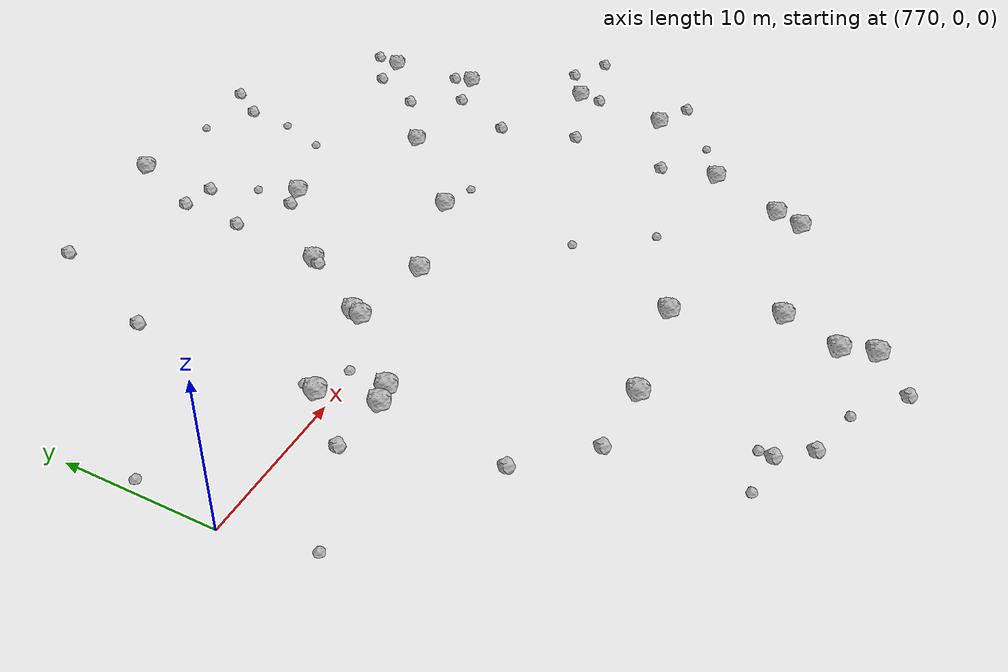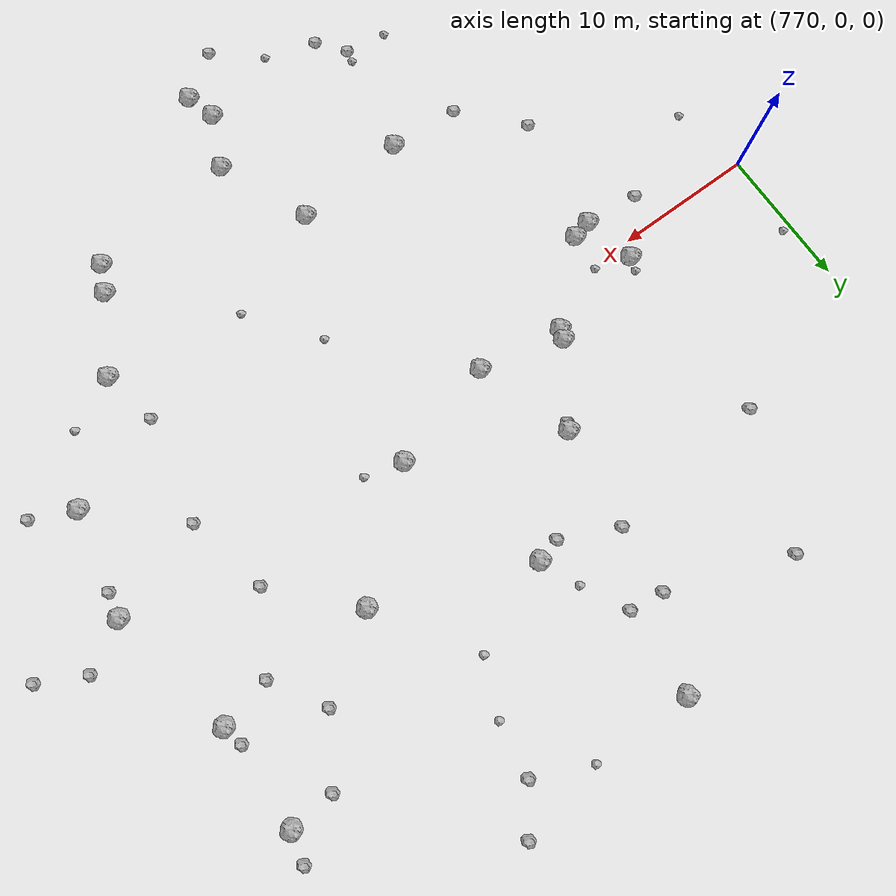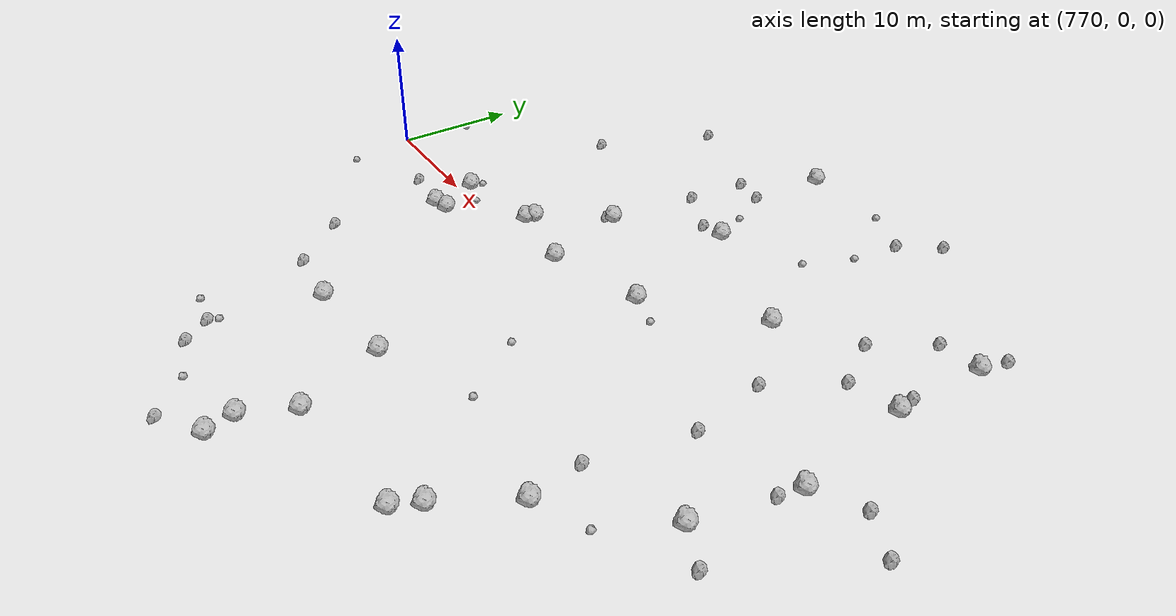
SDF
<sdf version="1.6">
 <world name="default">
  <include><uri>model://sun</uri></include>
  <model name="rock1_20_4">
   <include><uri>model://rock1</uri><pose>780.7087238553667 1.047119432619084 0.5 0 0 0</pose></include>
  </model>
  <model name="rock1_20_5">
   <include><uri>model://rock1</uri><pose>781.5615007582418 -2.721428096870792 0.5 0 0 0</pose></include>
  </model>
  <model name="rock1_20_6">
   <include><uri>model://rock1</uri><pose>822.7758342607357 1.30580835592027 0.5 0 0 0</pose></include>
  </model>
  <model name="rock1_20_7">
   <include><uri>model://rock1</uri><pose>821.1682087089554 -6.28629386375162 0.5 0 0 0</pose></include>
  </model>
  <model name="rock1_20_8">
   <include><uri>model://rock1</uri><pose>810.8321413861769 -20.036732497918734 0.5 0 0 0</pose></include>
  </model>
  <model name="rock1_20_9">
   <include><uri>model://rock1</uri><pose>798.5094511256077 14.224671554900432 0.5 0 0 0</pose></include>
  </model>
  <model name="rock1_20_10">
   <include><uri>model://rock1</uri><pose>796.0763832410858 26.54390348556337 0.5 0 0 0</pose></include>
  </model>
  <model name="rock1_20_11">
   <include><uri>model://rock1</uri><pose>798.3817781210798 -25.025211873225274 0.5 0 0 0</pose></include>
  </model>
  <model name="rock1_20_12">
   <include><uri>model://rock1</uri><pose>801.8836378258139 3.663269624933811 0.5 0 0 0</pose></include>
  </model>
  <model name="rock1_20_13">
   <include><uri>model://rock1</uri><pose>788.1073647116916 3.0646148261018666 0.5 0 0 0</pose></include>
  </model>
  <model name="rock1_20_14">
   <include><uri>model://rock1</uri><pose>793.977697011786 1.454041069729584 0.5 0 0 0</pose></include>
  </model>
  <model name="rock1_20_15">
   <include><uri>model://rock1</uri><pose>811.7577595870337 -18.13167919682487 0.5 0 0 0</pose></include>
  </model>
  <model name="rock1_20_16">
   <include><uri>model://rock1</uri><pose>791.6988519845751 8.365341680058584 0.5 0 0 0</pose></include>
  </model>
  <model name="rock1_20_17">
   <include><uri>model://rock1</uri><pose>782.9170620956335 -2.3881175419100273 0.5 0 0 0</pose></include>
  </model>
  <model name="rock1_20_18">
   <include><uri>model://rock1</uri><pose>800.0786611668133 -21.291052738356928 0.5 0 0 0</pose></include>
  </model>
  <model name="rock1_20_19">
   <include><uri>model://rock1</uri><pose>789.1473881896933 -15.4974859853613 0.5 0 0 0</pose></include>
  </model>
  <model name="rock1_20_20">
   <include><uri>model://rock1</uri><pose>820.9724203381492 10.928925062806023 0.5 0 0 0</pose></include>
  </model>
  <model name="rock1_20_21">
   <include><uri>model://rock1</uri><pose>809.4150963798675 10.125920861918459 0.5 0 0 0</pose></include>
  </model>
  <model name="rock1_20_22">
   <include><uri>model://rock1</uri><pose>787.8533105512536 2.3589244478238385 0.5 0 0 0</pose></include>
  </model>
  <model name="rock1_20_23">
   <include><uri>model://rock1</uri><pose>797.2754239507265 -14.721835300061377 0.5 0 0 0</pose></include>
  </model>
  <model name="rock1_20_24">
   <include><uri>model://rock1</uri><pose>820.9543822723572 18.486615211233577 0.5 0 0 0</pose></include>
  </model>
  <model name="rock1_20_25">
   <include><uri>model://rock1</uri><pose>814.7743476271094 -12.863143285273463 0.5 0 0 0</pose></include>
  </model>
  <model name="rock1_20_26">
   <include><uri>model://rock1</uri><pose>799.0074334482929 -27.165031107944486 0.5 0 0 0</pose></include>
  </model>
  <model name="rock2_20_0">
   <include><uri>model://rock2</uri><pose>807.2650547770018 24.708907001039748 0.3 0 0 0</pose></include>
  </model>
  <model name="rock2_20_1">
   <include><uri>model://rock2</uri><pose>814.9388069511034 13.852621422595284 0.3 0 0 0</pose></include>
  </model>
  <model name="rock2_20_2">
   <include><uri>model://rock2</uri><pose>817.2238779299878 10.075136642513954 0.3 0 0 0</pose></include>
  </model>
  <model name="rock2_20_3">
   <include><uri>model://rock2</uri><pose>780.3904415653581 -11.171914371119517 0.3 0 0 0</pose></include>
  </model>
  <model name="rock2_20_4">
   <include><uri>model://rock2</uri><pose>829.4040070215191 1.5924790237087585 0.3 0 0 0</pose></include>
  </model>
  <model name="rock2_20_5">
   <include><uri>model://rock2</uri><pose>795.8579896425124 -29.42323859561697 0.3 0 0 0</pose></include>
  </model>
  <model name="rock2_20_6">
   <include><uri>model://rock2</uri><pose>821.5077048436174 20.689550283531105 0.3 0 0 0</pose></include>
  </model>
  <model name="rock2_20_7">
   <include><uri>model://rock2</uri><pose>826.1755413207538 3.23406467460147 0.3 0 0 0</pose></include>
  </model>
  <model name="rock2_20_8">
   <include><uri>model://rock2</uri><pose>809.4490080897016 27.663125100845235 0.3 0 0 0</pose></include>
  </model>
  <model name="rock2_20_9">
   <include><uri>model://rock2</uri><pose>784.6076453794063 23.700499779845195 0.3 0 0 0</pose></include>
  </model>
  <model name="rock2_20_10">
   <include><uri>model://rock2</uri><pose>796.7434669485839 13.791216549527398 0.3 0 0 0</pose></include>
  </model>
  <model name="rock2_20_11">
   <include><uri>model://rock2</uri><pose>793.2085304688459 20.56297382619445 0.3 0 0 0</pose></include>
  </model>
  <model name="rock2_20_12">
   <include><uri>model://rock2</uri><pose>791.3933894805425 7.923321654881612 0.3 0 0 0</pose></include>
  </model>
  <model name="rock2_20_13">
   <include><uri>model://rock2</uri><pose>777.558740284767 -2.3686103292189102 0.3 0 0 0</pose></include>
  </model>
  <model name="rock2_20_14">
   <include><uri>model://rock2</uri><pose>815.5281288876693 -1.0910251426986086 0.3 0 0 0</pose></include>
  </model>
  <model name="rock2_20_15">
   <include><uri>model://rock2</uri><pose>784.0823687413516 -15.206747380778296 0.3 0 0 0</pose></include>
  </model>
  <model name="rock2_20_16">
   <include><uri>model://rock2</uri><pose>824.2734567847807 -7.674283360554057 0.3 0 0 0</pose></include>
  </model>
  <model name="rock2_20_17">
   <include><uri>model://rock2</uri><pose>822.4300485454949 -0.515886018779895 0.3 0 0 0</pose></include>
  </model>
  <model name="rock2_20_18">
   <include><uri>model://rock2</uri><pose>795.6652172322831 20.24036158443667 0.3 0 0 0</pose></include>
  </model>
  <model name="rock2_20_19">
   <include><uri>model://rock2</uri><pose>792.739268967426 15.635214422159542 0.3 0 0 0</pose></include>
  </model>
  <model name="rock2_20_20">
   <include><uri>model://rock2</uri><pose>820.6830427548464 12.464027502641862 0.3 0 0 0</pose></include>
  </model>
  <model name="rock2_20_21">
   <include><uri>model://rock2</uri><pose>780.8140531640145 14.365811908227037 0.3 0 0 0</pose></include>
  </model>
  <model name="rock2_20_22">
   <include><uri>model://rock2</uri><pose>813.9975214088715 -8.742425579949845 0.3 0 0 0</pose></include>
  </model>
  <model name="rock2_20_23">
   <include><uri>model://rock2</uri><pose>814.2243632560866 4.925792999857734 0.3 0 0 0</pose></include>
  </model>
  <model name="rock2_20_24">
   <include><uri>model://rock2</uri><pose>787.5667608546055 -23.635506733186475 0.3 0 0 0</pose></include>
  </model>
  <model name="rock2_20_25">
   <include><uri>model://rock2</uri><pose>789.0772776528678 -25.59915475305116 0.3 0 0 0</pose></include>
  </model>
  <model name="rock2_20_26">
   <include><uri>model://rock2</uri><pose>817.6861748512445 18.238426605607508 0.3 0 0 0</pose></include>
  </model>
  <model name="rock3_20_0">
   <include><uri>model://rock3</uri><pose>783.1347407520421 0.26543902677687115 0.2 0 0 0</pose></include>
  </model>
  <model name="rock3_20_1">
   <include><uri>model://rock3</uri><pose>804.61718604815 2.9197346710541083 0.2 0 0 0</pose></include>
  </model>
  <model name="rock3_20_2">
   <include><uri>model://rock3</uri><pose>771.0857011168537 -5.44547186290702 0.2 0 0 0</pose></include>
  </model>
  <model name="rock3_20_3">
   <include><uri>model://rock3</uri><pose>780.9422977544054 2.031126793278794 0.2 0 0 0</pose></include>
  </model>
  <model name="rock3_20_4">
   <include><uri>model://rock3</uri><pose>818.5813222637912 -11.062665937495094 0.2 0 0 0</pose></include>
  </model>
  <model name="rock3_20_5">
   <include><uri>model://rock3</uri><pose>770.6783069660644 5.767806173840718 0.2 0 0 0</pose></include>
  </model>
  <model name="rock3_20_6">
   <include><uri>model://rock3</uri><pose>784.5648153915158 -23.271819694489487 0.2 0 0 0</pose></include>
  </model>
  <model name="rock3_20_7">
   <include><uri>model://rock3</uri><pose>804.9987617607578 16.935224044811456 0.2 0 0 0</pose></include>
  </model>
  <model name="rock3_20_8">
   <include><uri>model://rock3</uri><pose>792.6968478986834 -26.786768679282588 0.2 0 0 0</pose></include>
  </model>
  <model name="rock3_20_9">
   <include><uri>model://rock3</uri><pose>801.3231189396489 -6.540383062458972 0.2 0 0 0</pose></include>
  </model>
  <model name="rock3_20_10">
   <include><uri>model://rock3</uri><pose>806.6337917514342 20.803736211414368 0.2 0 0 0</pose></include>
  </model>
  <model name="rock3_20_11">
   <include><uri>model://rock3</uri><pose>787.6993567647177 -22.838455974514908 0.2 0 0 0</pose></include>
  </model>
  <model name="rock3_20_12">
   <include><uri>model://rock3</uri><pose>804.9440872632858 -11.422159410351679 0.2 0 0 0</pose></include>
  </model>
  <model name="rock3_20_13">
   <include><uri>model://rock3</uri><pose>797.311273098452 17.02990933094936 0.2 0 0 0</pose></include>
  </model>
  <model name="rock3_20_14">
   <include><uri>model://rock3</uri><pose>803.2520100807919 26.48850777413682 0.2 0 0 0</pose></include>
  </model>
 </world>
</sdf>
